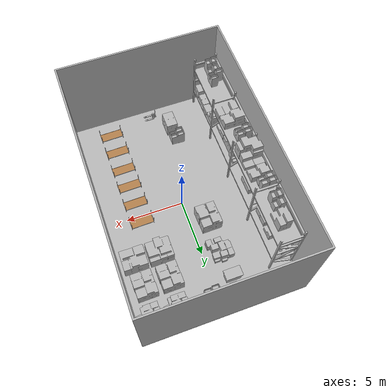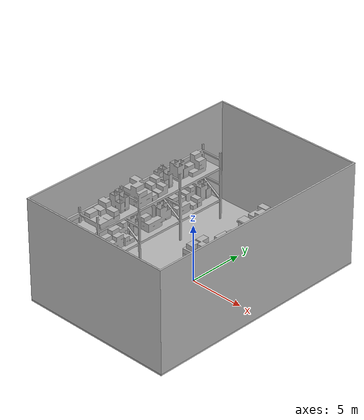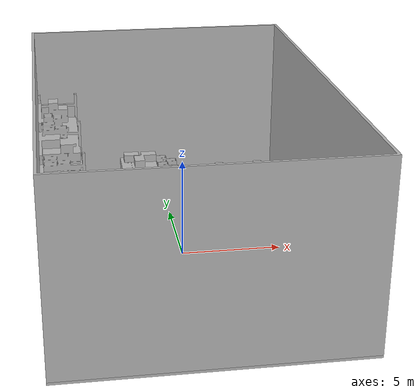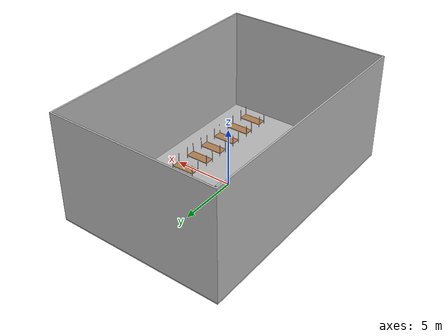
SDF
<sdf version="1.6">
 <world name="default">
  <gravity>0 0 -9.8</gravity>
  <physics default="0" name="default_physics" type="ode">
   <max_step_size>0.001</max_step_size>
   <real_time_factor>1</real_time_factor>
   <real_time_update_rate>1000</real_time_update_rate>
  </physics>
  <model name="aws_robomaker_warehouse_ShelfF_01_001">
   <include><uri>model://aws_robomaker_warehouse_ShelfF_01_classic</uri></include>
   <pose>-5.795143 -0.956635 0 0 0 0</pose>
  </model>
  <model name="aws_robomaker_warehouse_WallB_01_001">
   <include><uri>model://aws_robomaker_warehouse_WallB_01_classic</uri></include>
  </model>
  <model name="pallet_0">
   <include><uri>model://warehouse_pallet3_classic</uri></include>
   <pose>3.728 0.57943 0 0 0 1.588</pose>
  </model>
  <model name="pallet_1">
   <include><uri>model://warehouse_pallet3_classic</uri></include>
   <pose>3.728 -4.827049 0 0 0 1.588</pose>
  </model>
  <model name="pallet_2">
   <include><uri>model://warehouse_pallet3_classic</uri></include>
   <pose>3.728  -8.6651 0 0 0 1.588</pose>
  </model>
  <model name="pallet_3">
   <include><uri>model://warehouse_pallet3_classic</uri></include>
   <pose>3.728  -1.242668 0 0 0 1.588</pose>
  </model>
  <model name="pallet_4">
   <include><uri>model://warehouse_pallet3_classic</uri></include>
   <pose>3.728  -3.038551 0 0 0 1.588</pose>
  </model>
  <model name="pallet_5">
   <include><uri>model://warehouse_pallet3_classic</uri></include>
   <pose>3.728  -6.750542 0 0 0 1.588</pose>
  </model>
  <model name="aws_robomaker_warehouse_GroundB_01_001">
   <include><uri>model://aws_robomaker_warehouse_GroundB_01_classic</uri></include>
   <pose>0.0 0.0 -0.090092 0 0 0</pose>
  </model>
  <model name="aws_robomaker_warehouse_Bucket_01_020">
   <include><uri>model://aws_robomaker_warehouse_Bucket_01_classic</uri></include>
   <pose>0.433449 9.631706 0 0 0 -1.563161</pose>
  </model>
  <model name="aws_robomaker_warehouse_Bucket_01_021">
   <include><uri>model://aws_robomaker_warehouse_Bucket_01_classic</uri></include>
   <pose>-1.8321 -6.3752 0 0 0 -1.563161</pose>
  </model>
  <model name="aws_robomaker_warehouse_Bucket_01_022">
   <include><uri>model://aws_robomaker_warehouse_Bucket_01_classic</uri></include>
   <pose>0.433449 8.59 0 0 0 -1.563161</pose>
  </model>
  <model name="aws_robomaker_warehouse_ClutteringA_01_016">
   <include><uri>model://aws_robomaker_warehouse_ClutteringA_01_classic</uri></include>
   <pose>5.708138 8.616844 -0.017477 0 0 0</pose>
  </model>
  <model name="aws_robomaker_warehouse_ClutteringA_01_017">
   <include><uri>model://aws_robomaker_warehouse_ClutteringA_01_classic</uri></include>
   <pose>3.408638 8.616844 -0.017477 0 0 0</pose>
  </model>
  <model name="aws_robomaker_warehouse_ClutteringA_01_018">
   <include><uri>model://aws_robomaker_warehouse_ClutteringA_01_classic</uri></include>
   <pose>-1.491287 5.222435 -0.017477 0 0 -1.583185</pose>
  </model>
  <model name="aws_robomaker_warehouse_ClutteringC_01_027">
   <include><uri>model://aws_robomaker_warehouse_ClutteringC_01_classic</uri></include>
   <pose>3.324959 3.822449 -0.012064 0 0 1.563871</pose>
  </model>
  <model name="aws_robomaker_warehouse_ClutteringC_01_028">
   <include><uri>model://aws_robomaker_warehouse_ClutteringC_01_classic</uri></include>
   <pose>5.54171 3.816475 -0.015663 0 0 -1.583191</pose>
  </model>
  <model name="aws_robomaker_warehouse_ClutteringC_01_029">
   <include><uri>model://aws_robomaker_warehouse_ClutteringC_01_classic</uri></include>
   <pose>5.384239 6.137154 0 0 0 3.150000</pose>
  </model>
  <model name="aws_robomaker_warehouse_ClutteringC_01_030">
   <include><uri>model://aws_robomaker_warehouse_ClutteringC_01_classic</uri></include>
   <pose>3.236 6.137154 0 0 0 3.150000</pose>
  </model>
  <model name="aws_robomaker_warehouse_ClutteringC_01_031">
   <include><uri>model://aws_robomaker_warehouse_ClutteringC_01_classic</uri></include>
   <pose>-1.573677 2.301994 -0.015663 0 0 -3.133191</pose>
  </model>
  <model name="aws_robomaker_warehouse_ClutteringC_01_032">
   <include><uri>model://aws_robomaker_warehouse_ClutteringC_01_classic</uri></include>
   <pose>-1.2196 9.407 -0.015663 0 0 1.563871</pose>
  </model>
  <model name="aws_robomaker_warehouse_ClutteringD_01_005">
   <include><uri>model://aws_robomaker_warehouse_ClutteringD_01_classic</uri></include>
   <pose>-1.634682 -7.811813 -0.319559 0 0 0</pose>
  </model>
  <model name="aws_robomaker_warehouse_TrashCanC_01_002">
   <include><uri>model://aws_robomaker_warehouse_TrashCanC_01_classic</uri></include>
   <pose>-1.592441 7.715420 0 0 0 0</pose>
  </model>
  <model name="aws_robomaker_warehouse_PalletJackB_01_001">
   <include><uri>model://aws_robomaker_warehouse_PalletJackB_01_classic</uri></include>
   <pose>-0.276098 -9.481944 0.023266 0 0 0</pose>
  </model>
  <light name="Warehouse_CeilingLight_003" type="point">
   <pose>0 0 18 0 0 0</pose>
   <diffuse>0.5 0.5 0.5 1</diffuse>
   <specular>0.2 0.2 0.2 1</specular>
   <attenuation>
    <range>80</range>
    <constant>0.01</constant>
    <linear>0.01</linear>
    <quadratic>0.001</quadratic>
   </attenuation>
   <direction>0.1 0.1 -1</direction>
  </light>
 </world>
</sdf>

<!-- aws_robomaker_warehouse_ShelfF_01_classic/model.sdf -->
<sdf version="1.6">
  <model name="aws_robomaker_warehouse_ShelfF_01_classic">
    <link name="link">
      <inertial>
        <mass>30</mass>
        <inertia>
          <ixx>907.144</ixx>
          <ixy>0</ixy>
          <ixz>0</ixz>
          <iyy>104.950</iyy>
          <iyz>0</iyz>
          <izz>824.248</izz>
        </inertia>
      </inertial>
      <collision name="collision">
        <geometry>
          <mesh>
            <uri>model://aws_robomaker_warehouse_ShelfF_01_classic/meshes/aws_robomaker_warehouse_ShelfF_01_classic_collision.DAE</uri>
            <scale>1 1 1</scale>
          </mesh>
        </geometry>
		<surface>
          <friction>
            <ode>
              <mu>0.2</mu>
              <mu2>0.2</mu2>
              <fdir1>0 0 0</fdir1>
              <slip1>0</slip1>
              <slip2>0</slip2>
            </ode>
        </friction>
          </surface>
      </collision>
      <visual name="visual">
	    <geometry>
          <mesh>
            <uri>model://aws_robomaker_warehouse_ShelfF_01_classic/meshes/aws_robomaker_warehouse_ShelfF_01_classic_visual.DAE</uri>
          </mesh>
        </geometry>
      <meta> <layer> 1 </layer></meta>
</visual>
    </link>
<static>1</static>
  </model>
</sdf>

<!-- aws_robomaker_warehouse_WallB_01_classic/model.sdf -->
<sdf version="1.6">
  <model name="aws_robomaker_warehouse_WallB_01_classic">
    <link name="link">
      <inertial>
        <mass>1000</mass>
        <inertia>
          <ixx>840083.33</ixx>
          <ixy>0</ixy>
          <ixz>0</ixz>
          <iyy>475500.0</iyy>
          <iyz>0</iyz>
          <izz>1302083.33</izz>
        </inertia>
      </inertial>
      <collision name="collision">
        <geometry>
          <mesh>
            <uri>model://aws_robomaker_warehouse_WallB_01_classic/meshes/aws_robomaker_warehouse_WallB_01_classic_collision.DAE</uri>
            <scale>1 1 1</scale>
          </mesh>
        </geometry>
		<surface>
          <friction>
            <ode>
              <mu>0.5</mu>
              <mu2>0.5</mu2>
              <fdir1>0 0 0</fdir1>
              <slip1>0</slip1>
              <slip2>0</slip2>
            </ode>
        </friction>
          </surface>
      </collision>
      <visual name="visual">
	    <geometry>
          <mesh>
            <uri>model://aws_robomaker_warehouse_WallB_01_classic/meshes/aws_robomaker_warehouse_WallB_01_classic_visual.DAE</uri>
          </mesh>
        </geometry>
      <meta> <layer> 2 </layer></meta>
</visual>
    </link>
<static>1</static>
  </model>
</sdf>

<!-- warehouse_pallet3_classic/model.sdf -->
<sdf version='1.6'>
  <model name='warehouse_pallet3_classic'>
    <link name='warehouse_pallet_classic::link'>
      <pose frame=''>0.009918 -0.125262 -0 0 -0 1.57</pose>
      <self_collide>0</self_collide>
      <inertial>
        <pose frame=''>0 0 0 0 -0 0</pose>
        <inertia>
          <ixx>0.0267042</ixx>
          <ixy>0</ixy>
          <ixz>0</ixz>
          <iyy>0.0937875</iyy>
          <iyz>0</iyz>
          <izz>0.120417</izz>
        </inertia>
        <mass>0.1</mass>
      </inertial>
      <enable_wind>0</enable_wind>
      <kinematic>0</kinematic>
      <gravity>1</gravity>
      <visual name='holding1_visual'>
        <pose frame=''>0 0.39 0.3 0 -0 0</pose>
        <geometry>
          <box>
            <size>1.98 0.02 0.05</size>
          </box>
        </geometry>
        <material>
          <script>
            <uri>file://media/materials/scripts/gazebo.material</uri>
            <name>Gazebo/Grey</name>
          </script>
          <shader type='pixel'>
            <normal_map>__default__</normal_map>
          </shader>
          <ambient>0.3 0.3 0.3 1</ambient>
          <diffuse>0.7 0.7 0.7 1</diffuse>
          <specular>0.01 0.01 0.01 1</specular>
          <emissive>0 0 0 1</emissive>
        </material>
        <transparency>0</transparency>
        <cast_shadows>1</cast_shadows>
      </visual>
      <visual name='front_left_leg'>
        <pose frame=''>0.98 0.38 0.5 0 -0 0</pose>
        <geometry>
          <cylinder>
            <radius>0.02</radius>
            <length>1.2</length>
          </cylinder>
        </geometry>
        <material>
          <script>
            <uri>file://media/materials/scripts/gazebo.material</uri>
            <name>Gazebo/Grey</name>
          </script>
          <shader type='pixel'>
            <normal_map>__default__</normal_map>
          </shader>
          <ambient>0.3 0.3 0.3 1</ambient>
          <diffuse>0.7 0.7 0.7 1</diffuse>
          <specular>0.01 0.01 0.01 1</specular>
          <emissive>0 0 0 1</emissive>
        </material>
        <transparency>0</transparency>
        <cast_shadows>1</cast_shadows>
      </visual>
      <visual name='front_right_leg'>
        <pose frame=''>0.98 -0.38 0.5 0 -0 0</pose>
        <geometry>
          <cylinder>
            <radius>0.02</radius>
            <length>1.2</length>
          </cylinder>
        </geometry>
        <material>
          <script>
            <uri>file://media/materials/scripts/gazebo.material</uri>
            <name>Gazebo/Grey</name>
          </script>
          <shader type='pixel'>
            <normal_map>__default__</normal_map>
          </shader>
          <ambient>0.3 0.3 0.3 1</ambient>
          <diffuse>0.7 0.7 0.7 1</diffuse>
          <specular>0.01 0.01 0.01 1</specular>
          <emissive>0 0 0 1</emissive>
        </material>
        <transparency>0</transparency>
        <cast_shadows>1</cast_shadows>
      </visual>
      <visual name='back_right_leg'>
        <pose frame=''>-0.98 -0.38 0.5 0 -0 0</pose>
        <geometry>
          <cylinder>
            <radius>0.02</radius>
            <length>1.2</length>
          </cylinder>
        </geometry>
        <material>
          <script>
            <uri>file://media/materials/scripts/gazebo.material</uri>
            <name>Gazebo/Grey</name>
          </script>
          <shader type='pixel'>
            <normal_map>__default__</normal_map>
          </shader>
          <ambient>0.3 0.3 0.3 1</ambient>
          <diffuse>0.7 0.7 0.7 1</diffuse>
          <specular>0.01 0.01 0.01 1</specular>
          <emissive>0 0 0 1</emissive>
        </material>
        <transparency>0</transparency>
        <cast_shadows>1</cast_shadows>
      </visual>
      <visual name='back_left_leg'>
        <pose frame=''>-0.98 0.38 0.5 0 -0 0</pose>
        <geometry>
          <cylinder>
            <radius>0.02</radius>
            <length>1.2</length>
          </cylinder>
        </geometry>
        <material>
          <script>
            <uri>file://media/materials/scripts/gazebo.material</uri>
            <name>Gazebo/Grey</name>
          </script>
          <shader type='pixel'>
            <normal_map>__default__</normal_map>
          </shader>
          <ambient>0.3 0.3 0.3 1</ambient>
          <diffuse>0.7 0.7 0.7 1</diffuse>
          <specular>0.01 0.01 0.01 1</specular>
          <emissive>0 0 0 1</emissive>
        </material>
        <transparency>0</transparency>
        <cast_shadows>1</cast_shadows>
      </visual>
      <visual name='visual1'>
        <pose frame=''>0 0 0.3 0 -0 0</pose>
        <geometry>
          <box>
            <size>2 0.8 0.03</size>
          </box>
        </geometry>
        <material>
          <script>
            <uri>file://media/materials/scripts/gazebo.material</uri>
            <name>Gazebo/Wood</name>
          </script>
          <shader type='pixel'>
            <normal_map>__default__</normal_map>
          </shader>
          <ambient>1 1 1 1</ambient>
          <diffuse>1 1 1 1</diffuse>
          <specular>0.2 0.2 0.2 1</specular>
          <emissive>0 0 0 1</emissive>
        </material>
        <transparency>0</transparency>
        <cast_shadows>1</cast_shadows>
      </visual>
      <visual name='holding2_visual'>
        <pose frame=''>0 -0.39 0.3 0 -0 0</pose>
        <geometry>
          <box>
            <size>1.98 0.02 0.05</size>
          </box>
        </geometry>
        <material>
          <script>
            <uri>file://media/materials/scripts/gazebo.material</uri>
            <name>Gazebo/Grey</name>
          </script>
          <shader type='pixel'>
            <normal_map>__default__</normal_map>
          </shader>
          <ambient>0.3 0.3 0.3 1</ambient>
          <diffuse>0.7 0.7 0.7 1</diffuse>
          <specular>0.01 0.01 0.01 1</specular>
          <emissive>0 0 0 1</emissive>
        </material>
        <transparency>0</transparency>
        <cast_shadows>1</cast_shadows>
      </visual>
      <visual name='holding3_visual'>
        <pose frame=''>0.98 0 0.3 0 -0 1.57</pose>
        <geometry>
          <box>
            <size>0.8 0.02 0.05</size>
          </box>
        </geometry>
        <material>
          <script>
            <uri>file://media/materials/scripts/gazebo.material</uri>
            <name>Gazebo/Grey</name>
          </script>
          <shader type='pixel'>
            <normal_map>__default__</normal_map>
          </shader>
          <ambient>0.3 0.3 0.3 1</ambient>
          <diffuse>0.7 0.7 0.7 1</diffuse>
          <specular>0.01 0.01 0.01 1</specular>
          <emissive>0 0 0 1</emissive>
        </material>
        <transparency>0</transparency>
        <cast_shadows>1</cast_shadows>
      </visual>
      <visual name='holding4_visual'>
        <pose frame=''>-0.98 0 0.3 0 -0 1.57</pose>
        <geometry>
          <box>
            <size>0.8 0.02 0.05</size>
          </box>
        </geometry>
        <material>
          <script>
            <uri>file://media/materials/scripts/gazebo.material</uri>
            <name>Gazebo/Grey</name>
          </script>
          <shader type='pixel'>
            <normal_map>__default__</normal_map>
          </shader>
          <ambient>0.3 0.3 0.3 1</ambient>
          <diffuse>0.7 0.7 0.7 1</diffuse>
          <specular>0.01 0.01 0.01 1</specular>
          <emissive>0 0 0 1</emissive>
        </material>
        <transparency>0</transparency>
        <cast_shadows>1</cast_shadows>
      </visual>
      <collision name='surface1'>
        <laser_retro>0</laser_retro>
        <max_contacts>10</max_contacts>
        <pose frame=''>0 0 0.3 0 -0 0</pose>
        <geometry>
          <box>
            <size>2 0.8 0.03</size>
          </box>
        </geometry>
        <surface>
          <friction>
            <ode>
              <mu>20</mu>
              <mu2>20</mu2>
              <fdir1>0 0 0</fdir1>
              <slip1>0</slip1>
              <slip2>0</slip2>
            </ode>
            <torsional>
              <coefficient>1</coefficient>
              <patch_radius>0</patch_radius>
              <surface_radius>0</surface_radius>
              <use_patch_radius>1</use_patch_radius>
              <ode>
                <slip>0</slip>
              </ode>
            </torsional>
          </friction>
          <bounce>
            <restitution_coefficient>0</restitution_coefficient>
            <threshold>1e+06</threshold>
          </bounce>
          <contact>
            <collide_without_contact>0</collide_without_contact>
            <collide_without_contact_bitmask>1</collide_without_contact_bitmask>
            <collide_bitmask>1</collide_bitmask>
            <ode>
              <soft_cfm>0</soft_cfm>
              <soft_erp>0.2</soft_erp>
              <kp>1e+13</kp>
              <kd>1</kd>
              <max_vel>0.01</max_vel>
              <min_depth>0</min_depth>
            </ode>
            <bullet>
              <split_impulse>1</split_impulse>
              <split_impulse_penetration_threshold>-0.01</split_impulse_penetration_threshold>
              <soft_cfm>0</soft_cfm>
              <soft_erp>0.2</soft_erp>
              <kp>1e+13</kp>
              <kd>1</kd>
            </bullet>
          </contact>
        </surface>
      </collision>
      <collision name='holding1_collision'>
        <laser_retro>0</laser_retro>
        <max_contacts>10</max_contacts>
        <pose frame=''>0 0.39 0.3 0 -0 0</pose>
        <geometry>
          <box>
            <size>1.98 0.02 0.05</size>
          </box>
        </geometry>
        <surface>
          <friction>
            <ode>
              <mu>1e+09</mu>
              <mu2>1e+09</mu2>
              <fdir1>0 0 0</fdir1>
              <slip1>0</slip1>
              <slip2>0</slip2>
            </ode>
            <torsional>
              <coefficient>1</coefficient>
              <patch_radius>0</patch_radius>
              <surface_radius>0</surface_radius>
              <use_patch_radius>1</use_patch_radius>
              <ode>
                <slip>0</slip>
              </ode>
            </torsional>
          </friction>
          <bounce>
            <restitution_coefficient>0</restitution_coefficient>
            <threshold>1e+06</threshold>
          </bounce>
          <contact>
            <collide_without_contact>0</collide_without_contact>
            <collide_without_contact_bitmask>1</collide_without_contact_bitmask>
            <collide_bitmask>1</collide_bitmask>
            <ode>
              <soft_cfm>0</soft_cfm>
              <soft_erp>0.2</soft_erp>
              <kp>1e+13</kp>
              <kd>1</kd>
              <max_vel>0.01</max_vel>
              <min_depth>0</min_depth>
            </ode>
            <bullet>
              <split_impulse>1</split_impulse>
              <split_impulse_penetration_threshold>-0.01</split_impulse_penetration_threshold>
              <soft_cfm>0</soft_cfm>
              <soft_erp>0.2</soft_erp>
              <kp>1e+13</kp>
              <kd>1</kd>
            </bullet>
          </contact>
        </surface>
      </collision>
      <collision name='holding2_collision'>
        <laser_retro>0</laser_retro>
        <max_contacts>10</max_contacts>
        <pose frame=''>0 -0.4 0.3 0 -0 0</pose>
        <geometry>
          <box>
            <size>1.98 0.02 0.05</size>
          </box>
        </geometry>
        <surface>
          <friction>
            <ode>
              <mu>1e+09</mu>
              <mu2>1e+09</mu2>
              <fdir1>0 0 0</fdir1>
              <slip1>0</slip1>
              <slip2>0</slip2>
            </ode>
            <torsional>
              <coefficient>1</coefficient>
              <patch_radius>0</patch_radius>
              <surface_radius>0</surface_radius>
              <use_patch_radius>1</use_patch_radius>
              <ode>
                <slip>0</slip>
              </ode>
            </torsional>
          </friction>
          <bounce>
            <restitution_coefficient>0</restitution_coefficient>
            <threshold>1e+06</threshold>
          </bounce>
          <contact>
            <collide_without_contact>0</collide_without_contact>
            <collide_without_contact_bitmask>1</collide_without_contact_bitmask>
            <collide_bitmask>1</collide_bitmask>
            <ode>
              <soft_cfm>0</soft_cfm>
              <soft_erp>0.2</soft_erp>
              <kp>1e+13</kp>
              <kd>1</kd>
              <max_vel>0.01</max_vel>
              <min_depth>0</min_depth>
            </ode>
            <bullet>
              <split_impulse>1</split_impulse>
              <split_impulse_penetration_threshold>-0.01</split_impulse_penetration_threshold>
              <soft_cfm>0</soft_cfm>
              <soft_erp>0.2</soft_erp>
              <kp>1e+13</kp>
              <kd>1</kd>
            </bullet>
          </contact>
        </surface>
      </collision>
      <collision name='holding4_collision'>
        <laser_retro>0</laser_retro>
        <max_contacts>10</max_contacts>
        <pose frame=''>-0.98 0 0.3 0 -0 1.57</pose>
        <geometry>
          <box>
            <size>0.8 0.02 0.05</size>
          </box>
        </geometry>
        <surface>
          <friction>
            <ode>
              <mu>1e+09</mu>
              <mu2>1e+09</mu2>
              <fdir1>0 0 0</fdir1>
              <slip1>0</slip1>
              <slip2>0</slip2>
            </ode>
            <torsional>
              <coefficient>1</coefficient>
              <patch_radius>0</patch_radius>
              <surface_radius>0</surface_radius>
              <use_patch_radius>1</use_patch_radius>
              <ode>
                <slip>0</slip>
              </ode>
            </torsional>
          </friction>
          <bounce>
            <restitution_coefficient>0</restitution_coefficient>
            <threshold>1e+06</threshold>
          </bounce>
          <contact>
            <collide_without_contact>0</collide_without_contact>
            <collide_without_contact_bitmask>1</collide_without_contact_bitmask>
            <collide_bitmask>1</collide_bitmask>
            <ode>
              <soft_cfm>0</soft_cfm>
              <soft_erp>0.2</soft_erp>
              <kp>1e+13</kp>
              <kd>1</kd>
              <max_vel>0.01</max_vel>
              <min_depth>0</min_depth>
            </ode>
            <bullet>
              <split_impulse>1</split_impulse>
              <split_impulse_penetration_threshold>-0.01</split_impulse_penetration_threshold>
              <soft_cfm>0</soft_cfm>
              <soft_erp>0.2</soft_erp>
              <kp>1e+13</kp>
              <kd>1</kd>
            </bullet>
          </contact>
        </surface>
      </collision>
      <collision name='holding3_collision'>
        <laser_retro>0</laser_retro>
        <max_contacts>10</max_contacts>
        <pose frame=''>0.98 0 0.3 0 -0 1.57</pose>
        <geometry>
          <box>
            <size>0.8 0.02 0.05</size>
          </box>
        </geometry>
        <surface>
          <friction>
            <ode>
              <mu>1e+09</mu>
              <mu2>1e+09</mu2>
              <fdir1>0 0 0</fdir1>
              <slip1>0</slip1>
              <slip2>0</slip2>
            </ode>
            <torsional>
              <coefficient>1</coefficient>
              <patch_radius>0</patch_radius>
              <surface_radius>0</surface_radius>
              <use_patch_radius>1</use_patch_radius>
              <ode>
                <slip>0</slip>
              </ode>
            </torsional>
          </friction>
          <bounce>
            <restitution_coefficient>0</restitution_coefficient>
            <threshold>1e+06</threshold>
          </bounce>
          <contact>
            <collide_without_contact>0</collide_without_contact>
            <collide_without_contact_bitmask>1</collide_without_contact_bitmask>
            <collide_bitmask>1</collide_bitmask>
            <ode>
              <soft_cfm>0</soft_cfm>
              <soft_erp>0.2</soft_erp>
              <kp>1e+13</kp>
              <kd>1</kd>
              <max_vel>0.01</max_vel>
              <min_depth>0</min_depth>
            </ode>
            <bullet>
              <split_impulse>1</split_impulse>
              <split_impulse_penetration_threshold>-0.01</split_impulse_penetration_threshold>
              <soft_cfm>0</soft_cfm>
              <soft_erp>0.2</soft_erp>
              <kp>1e+13</kp>
              <kd>1</kd>
            </bullet>
          </contact>
        </surface>
      </collision>
      <collision name='back_right_leg'>
        <laser_retro>0</laser_retro>
        <max_contacts>10</max_contacts>
        <pose frame=''>-0.98 -0.38 0.5 0 -0 0</pose>
        <geometry>
          <cylinder>
            <radius>0.02</radius>
            <length>1.2</length>
          </cylinder>
        </geometry>
        <surface>
          <friction>
            <ode>
              <mu>0.1</mu>
              <mu2>0.1</mu2>
              <fdir1>0 0 0</fdir1>
              <slip1>0</slip1>
              <slip2>0</slip2>
            </ode>
            <torsional>
              <coefficient>1</coefficient>
              <patch_radius>0</patch_radius>
              <surface_radius>0</surface_radius>
              <use_patch_radius>1</use_patch_radius>
              <ode>
                <slip>0</slip>
              </ode>
            </torsional>
          </friction>
          <bounce>
            <restitution_coefficient>0</restitution_coefficient>
            <threshold>1e+06</threshold>
          </bounce>
          <contact>
            <collide_without_contact>0</collide_without_contact>
            <collide_without_contact_bitmask>1</collide_without_contact_bitmask>
            <collide_bitmask>1</collide_bitmask>
            <ode>
              <soft_cfm>0</soft_cfm>
              <soft_erp>0.2</soft_erp>
              <kp>1e+13</kp>
              <kd>1</kd>
              <max_vel>0.01</max_vel>
              <min_depth>0</min_depth>
            </ode>
            <bullet>
              <split_impulse>1</split_impulse>
              <split_impulse_penetration_threshold>-0.01</split_impulse_penetration_threshold>
              <soft_cfm>0</soft_cfm>
              <soft_erp>0.2</soft_erp>
              <kp>1e+13</kp>
              <kd>1</kd>
            </bullet>
          </contact>
        </surface>
      </collision>
      <collision name='front_right_leg'>
        <laser_retro>0</laser_retro>
        <max_contacts>10</max_contacts>
        <pose frame=''>0.98 -0.38 0.5 0 -0 0</pose>
        <geometry>
          <cylinder>
            <radius>0.02</radius>
            <length>1</length>
          </cylinder>
        </geometry>
        <surface>
          <friction>
            <ode>
              <mu>0.1</mu>
              <mu2>0.1</mu2>
              <fdir1>0 0 0</fdir1>
              <slip1>0</slip1>
              <slip2>0</slip2>
            </ode>
            <torsional>
              <coefficient>1</coefficient>
              <patch_radius>0</patch_radius>
              <surface_radius>0</surface_radius>
              <use_patch_radius>1</use_patch_radius>
              <ode>
                <slip>0</slip>
              </ode>
            </torsional>
          </friction>
          <bounce>
            <restitution_coefficient>0</restitution_coefficient>
            <threshold>1e+06</threshold>
          </bounce>
          <contact>
            <collide_without_contact>0</collide_without_contact>
            <collide_without_contact_bitmask>1</collide_without_contact_bitmask>
            <collide_bitmask>1</collide_bitmask>
            <ode>
              <soft_cfm>0</soft_cfm>
              <soft_erp>0.2</soft_erp>
              <kp>1e+13</kp>
              <kd>1</kd>
              <max_vel>0.01</max_vel>
              <min_depth>0</min_depth>
            </ode>
            <bullet>
              <split_impulse>1</split_impulse>
              <split_impulse_penetration_threshold>-0.01</split_impulse_penetration_threshold>
              <soft_cfm>0</soft_cfm>
              <soft_erp>0.2</soft_erp>
              <kp>1e+13</kp>
              <kd>1</kd>
            </bullet>
          </contact>
        </surface>
      </collision>
      <collision name='front_left_leg'>
        <laser_retro>0</laser_retro>
        <max_contacts>10</max_contacts>
        <pose frame=''>0.98 0.38 0.5 0 -0 0</pose>
        <geometry>
          <cylinder>
            <radius>0.02</radius>
            <length>1.2</length>
          </cylinder>
        </geometry>
        <surface>
          <friction>
            <ode>
              <mu>0.1</mu>
              <mu2>0.1</mu2>
              <fdir1>0 0 0</fdir1>
              <slip1>0</slip1>
              <slip2>0</slip2>
            </ode>
            <torsional>
              <coefficient>1</coefficient>
              <patch_radius>0</patch_radius>
              <surface_radius>0</surface_radius>
              <use_patch_radius>1</use_patch_radius>
              <ode>
                <slip>0</slip>
              </ode>
            </torsional>
          </friction>
          <bounce>
            <restitution_coefficient>0</restitution_coefficient>
            <threshold>1e+06</threshold>
          </bounce>
          <contact>
            <collide_without_contact>0</collide_without_contact>
            <collide_without_contact_bitmask>1</collide_without_contact_bitmask>
            <collide_bitmask>1</collide_bitmask>
            <ode>
              <soft_cfm>0</soft_cfm>
              <soft_erp>0.2</soft_erp>
              <kp>1e+13</kp>
              <kd>1</kd>
              <max_vel>0.01</max_vel>
              <min_depth>0</min_depth>
            </ode>
            <bullet>
              <split_impulse>1</split_impulse>
              <split_impulse_penetration_threshold>-0.01</split_impulse_penetration_threshold>
              <soft_cfm>0</soft_cfm>
              <soft_erp>0.2</soft_erp>
              <kp>1e+13</kp>
              <kd>1</kd>
            </bullet>
          </contact>
        </surface>
      </collision>
      <collision name='back_left_leg'>
        <laser_retro>0</laser_retro>
        <max_contacts>10</max_contacts>
        <pose frame=''>-0.98 0.38 0.5 0 -0 0</pose>
        <geometry>
          <cylinder>
            <radius>0.02</radius>
            <length>1.2</length>
          </cylinder>
        </geometry>
        <surface>
          <friction>
            <ode>
              <mu>0.1</mu>
              <mu2>0.1</mu2>
              <fdir1>0 0 0</fdir1>
              <slip1>0</slip1>
              <slip2>0</slip2>
            </ode>
            <torsional>
              <coefficient>1</coefficient>
              <patch_radius>0</patch_radius>
              <surface_radius>0</surface_radius>
              <use_patch_radius>1</use_patch_radius>
              <ode>
                <slip>0</slip>
              </ode>
            </torsional>
          </friction>
          <bounce>
            <restitution_coefficient>0</restitution_coefficient>
            <threshold>1e+06</threshold>
          </bounce>
          <contact>
            <collide_without_contact>0</collide_without_contact>
            <collide_without_contact_bitmask>1</collide_without_contact_bitmask>
            <collide_bitmask>1</collide_bitmask>
            <ode>
              <soft_cfm>0</soft_cfm>
              <soft_erp>0.2</soft_erp>
              <kp>1e+13</kp>
              <kd>1</kd>
              <max_vel>0.01</max_vel>
              <min_depth>0</min_depth>
            </ode>
            <bullet>
              <split_impulse>1</split_impulse>
              <split_impulse_penetration_threshold>-0.01</split_impulse_penetration_threshold>
              <soft_cfm>0</soft_cfm>
              <soft_erp>0.2</soft_erp>
              <kp>1e+13</kp>
              <kd>1</kd>
            </bullet>
          </contact>
        </surface>
      </collision>
    </link>
    <static>0</static>
    <allow_auto_disable>1</allow_auto_disable>
  </model>
</sdf>

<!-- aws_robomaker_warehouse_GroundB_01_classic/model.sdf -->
<sdf version="1.6">
  <model name="aws_robomaker_warehouse_GroundB_01_classic">
    <link name="link">
      <inertial>
        <mass>1000</mass>
		<inertia>
          <ixx>1200083.33</ixx>
          <ixy>0</ixy>
          <ixz>0</ixz>
          <iyy>8333416.66</iyy>
          <iyz>0</iyz>
          <izz>2033333.33</izz>
        </inertia>
      </inertial>
      <collision name="collision">
        <geometry>
          <mesh>
            <uri>model://aws_robomaker_warehouse_GroundB_01_classic/meshes/aws_robomaker_warehouse_GroundB_01_classic_collision.DAE</uri>
            <scale>1 1 1</scale>
          </mesh>
        </geometry>
        <surface>
          <friction>
            <ode>
              <mu>1e+13</mu>
              <mu2>1e+13</mu2>
              <fdir1>0 0 0</fdir1>
              <slip1>0</slip1>
              <slip2>0</slip2>
            </ode>
          </friction>
        </surface>
      </collision>
      <visual name="visual">
	    <geometry>
          <mesh>
            <uri>model://aws_robomaker_warehouse_GroundB_01_classic/meshes/aws_robomaker_warehouse_GroundB_01_classic_visual.DAE</uri>
          </mesh>
        </geometry>
      <meta> <layer> 1 </layer></meta>
</visual>
    </link>
<static>1</static>
  </model>
</sdf>

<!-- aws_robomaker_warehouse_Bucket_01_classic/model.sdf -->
<sdf version='1.6'>
  <model name='aws_robomaker_warehouse_Bucket_01_classic'>
    <link name='body'>
	  <inertial>
        <mass>2</mass>
        <pose frame=''>0 0 0 0 0 0</pose>
        <inertia>
          <ixx>0.570</ixx>
          <ixy>0</ixy>
          <ixz>0</ixz>
          <iyy>0.474</iyy>
          <iyz>0</iyz>
          <izz>0.391</izz>
        </inertia>
      </inertial>
      <pose frame=''>0 0 0 0 -0 0</pose>
      <self_collide>0</self_collide>
      <kinematic>0</kinematic>
      <gravity>1</gravity>
      <visual name='visual'>
        <geometry>
          <mesh>
            <uri>model://aws_robomaker_warehouse_Bucket_01_classic/meshes/aws_robomaker_warehouse_Bucket_01_classic_visual.DAE</uri>
          </mesh>
        </geometry>
		<meta> <layer> 1 </layer></meta>
      </visual>
      <collision name='collision_0'>
        <laser_retro>0</laser_retro>
        <max_contacts>10</max_contacts>
        <pose frame=''>0 0 0 0 -0 0</pose>
        <geometry>
          <mesh>
            <uri>model://aws_robomaker_warehouse_Bucket_01_classic/meshes/aws_robomaker_warehouse_Bucket_01_classic_collision.DAE</uri>
            <scale>1 1 1</scale>
          </mesh>
        </geometry>
		<surface>
          <friction>
            <ode>
              <mu>0.4</mu>
              <mu2>0.4</mu2>
              <fdir1>0 0 0</fdir1>
              <slip1>0</slip1>
              <slip2>0</slip2>
            </ode>
            <torsional>
              <coefficient>1</coefficient>
              <patch_radius>0</patch_radius>
              <surface_radius>0</surface_radius>
              <use_patch_radius>1</use_patch_radius>
              <ode>
                <slip>0</slip>
              </ode>
            </torsional>
          </friction>
        </surface>
      </collision>
    </link>
    <static>true</static>
  </model>
</sdf>

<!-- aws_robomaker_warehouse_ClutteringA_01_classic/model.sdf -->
<sdf version="1.6">
  <model name="aws_robomaker_warehouse_ClutteringA_01_classic">
    <link name="link">
      <inertial>
        <mass>2</mass>
        <inertia>
          <ixx>0.841</ixx>
          <ixy>0</ixy>
          <ixz>0</ixz>
          <iyy>0.954</iyy>
          <iyz>0</iyz>
          <izz>1.422</izz>
        </inertia>
      </inertial>
      <collision name="collision">
        <geometry>
          <mesh>
            <uri>model://aws_robomaker_warehouse_ClutteringA_01_classic/meshes/aws_robomaker_warehouse_ClutteringA_01_classic_collision.DAE</uri>
            <scale>1 1 1</scale>
          </mesh>
        </geometry>
        <surface>
          <friction>
            <ode>
              <mu>0.6</mu>
              <mu2>0.6</mu2>
              <fdir1>0 0 0</fdir1>
              <slip1>0</slip1>
              <slip2>0</slip2>
            </ode>
            <torsional>
              <coefficient>1</coefficient>
              <patch_radius>0</patch_radius>
              <surface_radius>0</surface_radius>
              <use_patch_radius>1</use_patch_radius>
              <ode>
                <slip>0</slip>
              </ode>
            </torsional>
          </friction>
        </surface>
      </collision>
      <visual name="visual">
        <geometry>
          <mesh>
            <uri>model://aws_robomaker_warehouse_ClutteringA_01_classic/meshes/aws_robomaker_warehouse_ClutteringA_01_classic_visual.DAE</uri>
          </mesh>
        </geometry>
        <meta> <layer> 1 </layer></meta>
      </visual>
    </link>
    <static>1</static>
  </model>
</sdf>

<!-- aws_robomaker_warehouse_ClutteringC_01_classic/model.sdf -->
<sdf version="1.6">
  <model name="aws_robomaker_warehouse_ClutteringC_01_classic">
    <link name="link">
      <inertial>
        <mass>1</mass>
        <inertia>
          <ixx>1.558</ixx>
          <ixy>0</ixy>
          <ixz>0</ixz>
          <iyy>1.821</iyy>
          <iyz>0</iyz>
          <izz>1.892</izz>
        </inertia>
      </inertial>
      <collision name="collision">
        <geometry>
          <mesh>
            <uri>model://aws_robomaker_warehouse_ClutteringC_01_classic/meshes/aws_robomaker_warehouse_ClutteringC_01_classic_collision.DAE</uri>
            <scale>1 1 1</scale>
          </mesh>
        </geometry>
		<surface>
          <friction>
            <ode>
              <mu>0.6</mu>
              <mu2>0.6</mu2>
              <fdir1>0 0 0</fdir1>
              <slip1>0</slip1>
              <slip2>0</slip2>
            </ode>
            <torsional>
              <coefficient>1</coefficient>
              <patch_radius>0</patch_radius>
              <surface_radius>0</surface_radius>
              <use_patch_radius>1</use_patch_radius>
              <ode>
                <slip>0</slip>
              </ode>
            </torsional>
          </friction>
        </surface>
      </collision>
      <visual name="visual">
	    <geometry>
          <mesh>
            <uri>model://aws_robomaker_warehouse_ClutteringC_01_classic/meshes/aws_robomaker_warehouse_ClutteringC_01_classic_visual.DAE</uri>
          </mesh>
        </geometry>
        <meta> <layer> 1 </layer></meta>
      </visual>
    </link>
    <static>1</static>
  </model>
</sdf>

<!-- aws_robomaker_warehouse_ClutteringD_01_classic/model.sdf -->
<sdf version="1.6">
  <model name="aws_robomaker_warehouse_ClutteringD_01_classic">
    <link name="link">
      <inertial>
        <mass>1</mass>
        <inertia>
          <ixx>1.558</ixx>
          <ixy>0</ixy>
          <ixz>0</ixz>
          <iyy>1.821</iyy>
          <iyz>0</iyz>
          <izz>1.892</izz>
        </inertia>
      </inertial>
      <collision name="collision">
        <geometry>
          <mesh>
            <uri>model://aws_robomaker_warehouse_ClutteringD_01_classic/meshes/aws_robomaker_warehouse_ClutteringD_01_classic_collision.DAE</uri>
            <scale>1 1 1</scale>
          </mesh>
        </geometry>
        <surface>
          <friction>
            <ode>
              <mu>0.6</mu>
              <mu2>0.6</mu2>
              <fdir1>0 0 0</fdir1>
              <slip1>0</slip1>
              <slip2>0</slip2>
            </ode>
            <torsional>
              <coefficient>1</coefficient>
              <patch_radius>0</patch_radius>
              <surface_radius>0</surface_radius>
              <use_patch_radius>1</use_patch_radius>
              <ode>
                <slip>0</slip>
              </ode>
            </torsional>
          </friction>
        </surface>
      </collision>
      <visual name="visual">
	    <geometry>
          <mesh>
            <uri>model://aws_robomaker_warehouse_ClutteringD_01_classic/meshes/aws_robomaker_warehouse_ClutteringD_01_classic_visual.DAE</uri>
          </mesh>
        </geometry>
      <meta> <layer> 1 </layer></meta>
</visual>
    </link>
<static>1</static>
  </model>
</sdf>

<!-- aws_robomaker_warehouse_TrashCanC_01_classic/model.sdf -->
<sdf version="1.6">
  <model name="aws_robomaker_warehouse_TrashCanC_01_classic">
    <link name="link">
      <inertial>
        <mass>1</mass>
        <inertia>
          <ixx>0.200</ixx>
          <ixy>0</ixy>
          <ixz>0</ixz>
          <iyy>0.308</iyy>
          <iyz>0</iyz>
          <izz>0.240</izz>
        </inertia>
      </inertial>
      <collision name="collision">
        <geometry>
          <mesh>
            <uri>model://aws_robomaker_warehouse_TrashCanC_01_classic/meshes/aws_robomaker_warehouse_TrashCanC_01_classic_collision.DAE</uri>
            <scale>1 1 1</scale>
          </mesh>
        </geometry>
		<surface>
          <friction>
            <ode>
              <mu>0.4</mu>
              <mu2>0.4</mu2>
              <fdir1>0 0 0</fdir1>
              <slip1>0</slip1>
              <slip2>0</slip2>
            </ode>
        </friction>
          </surface>
      </collision>
      <visual name="visual">
	    <geometry>
          <mesh>
            <uri>model://aws_robomaker_warehouse_TrashCanC_01_classic/meshes/aws_robomaker_warehouse_TrashCanC_01_classic_visual.DAE</uri>
          </mesh>
        </geometry>
      <meta> <layer> 1 </layer></meta>
</visual>
    </link>
<static>1</static>
  </model>
</sdf>

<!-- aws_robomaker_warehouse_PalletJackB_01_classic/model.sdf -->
<sdf version="1.6">
  <model name="aws_robomaker_warehouse_PalletJackB_01_classic">
    <link name="link">
      <inertial>
        <mass>2</mass>
        <inertia>
          <ixx>0.277</ixx>
          <ixy>0</ixy>
          <ixz>0</ixz>
          <iyy>0.452</iyy>
          <iyz>0</iyz>
          <izz>0.268</izz>
        </inertia>
      </inertial>
      <collision name="collision">
        <geometry>
          <mesh>
            <uri>model://aws_robomaker_warehouse_PalletJackB_01_classic/meshes/aws_robomaker_warehouse_PalletJackB_01_classic_collision.DAE</uri>
            <scale>1 1 1</scale>
          </mesh>
        </geometry>
		<surface>
          <friction>
            <ode>
              <mu>0.2</mu>
              <mu2>0.2</mu2>
              <fdir1>0 0 0</fdir1>
              <slip1>0</slip1>
              <slip2>0</slip2>
            </ode>
        </friction>
          </surface>
      </collision>
      <visual name="visual">
	    <geometry>
          <mesh>
            <uri>model://aws_robomaker_warehouse_PalletJackB_01_classic/meshes/aws_robomaker_warehouse_PalletJackB_01_classic_visual.DAE</uri>
          </mesh>
        </geometry>
      <meta> <layer> 1 </layer></meta>
</visual>
    </link>
<static>1</static>
  </model>
</sdf>
